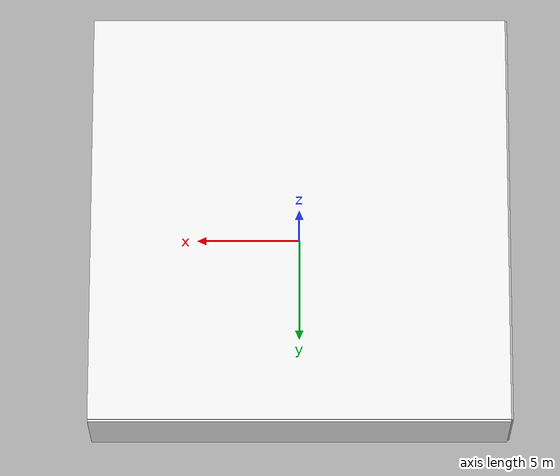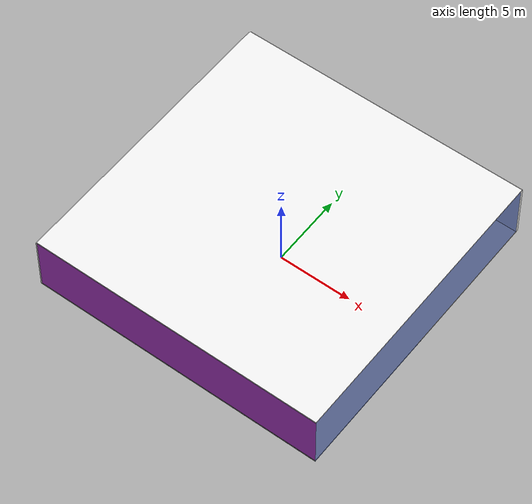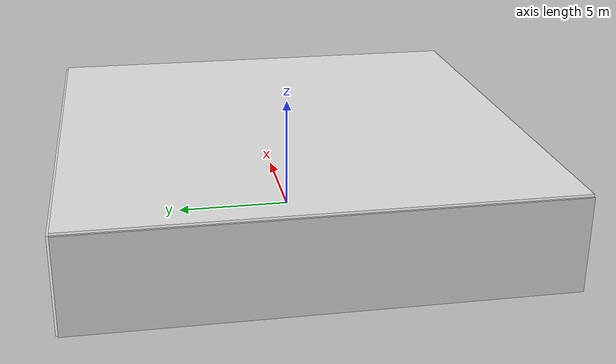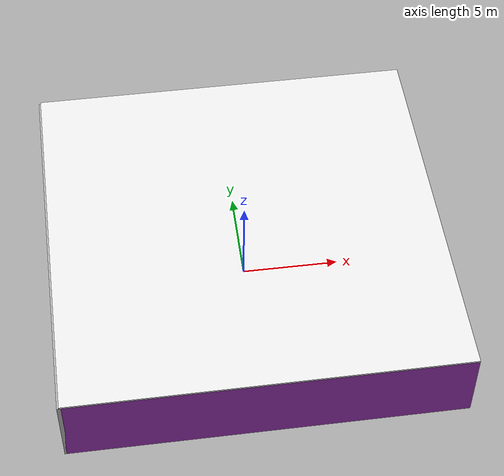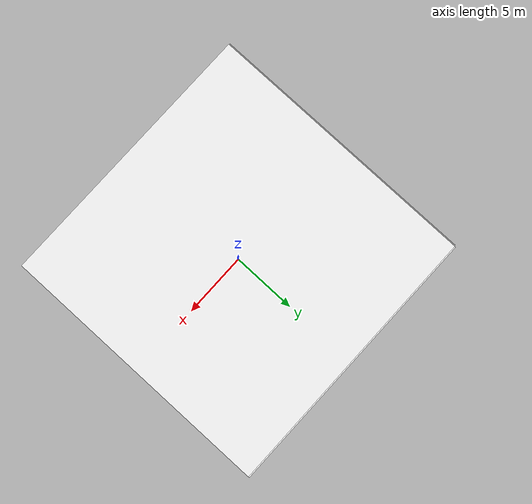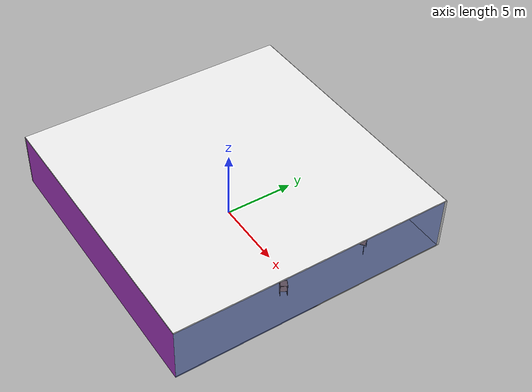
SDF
<sdf version="1.4">
 <world name="default">
  <physics type="ode">
   <max_step_size>0.001</max_step_size>
   <real_time_factor>1</real_time_factor>
   <real_time_update_rate>1000</real_time_update_rate>
   <gravity>0 0 -9.8</gravity>
  </physics>
  <scene><ambient>0.4 0.4 0.4 1</ambient><background>0.7 0.7 0.7 1</background><shadows>1</shadows></scene>
  <model name="Surrounding">
   <static>1</static>
   <link name="Ceiling">
    <collision name="Ceiling_Collision"><geometry><box><size>20 20 0.1</size></box></geometry></collision>
    <visual name="Ceiling_Visual">
     <geometry><box><size>20 20 0.1</size></box></geometry>
     <material>
      <script><uri>file://media/materials/scripts/gazebo.material</uri><name>Gazebo/White</name></script>
     </material>
    </visual>
    <pose>0 0 4.05 0 0 0</pose>
   </link>
   <link name="Wall_South">
    <collision name="Wall_South_Collision">
     <geometry><box><size>20 0 4</size></box></geometry>
     <pose>0 0 2 0 -0 0</pose>
    </collision>
    <visual name="Wall_South_Visual">
     <pose>0 0 2 0 -0 0</pose>
     <geometry><box><size>20 0 4</size></box></geometry>
     <material>
      <script><uri>file://media/materials/scripts/gazebo.material</uri><name>Gazebo/PurpleGlow</name></script>
     </material>
    </visual>
    <velocity_decay><linear>0</linear><angular>0</angular></velocity_decay>
    <pose>0 -10 0 0 -0 0</pose>
   </link>
   <link name="Wall_East">
    <collision name="Wall_21_Collision">
     <geometry><box><size>20 0 4</size></box></geometry>
     <pose>0 0 2 0 -0 0</pose>
    </collision>
    <visual name="Wall_21_Visual">
     <pose>0 0 2 0 -0 0</pose>
     <geometry><box><size>20 0 4</size></box></geometry>
     <material>
      <script><uri>file://media/materials/scripts/gazebo.material</uri><name>Gazebo/BlueTransparent</name></script>
     </material>
    </visual>
    <velocity_decay><linear>0</linear><angular>0</angular></velocity_decay>
    <pose>10 0 0 0 -0 1.5708</pose>
   </link>
   <link name="Wall_North">
    <collision name="Wall_22_Collision">
     <geometry><box><size>20 0.2 4</size></box></geometry>
     <pose>0 0 2 0 -0 0</pose>
    </collision>
    <visual name="Wall_22_Visual">
     <pose>0 0 2 0 -0 0</pose>
     <geometry><box><size>20 0.2 4</size></box></geometry>
     <material>
      <script><uri>file://media/materials/scripts/gazebo.material</uri><name>Gazebo/WhiteGlow</name></script>
     </material>
    </visual>
    <velocity_decay><linear>0</linear><angular>0</angular></velocity_decay>
    <pose>0 10 0 0 -0 0</pose>
   </link>
   <link name="Wall_West">
    <collision name="Wall_23_Collision">
     <geometry><box><size>20 0.2 4</size></box></geometry>
     <pose>0 0 2 0 -0 0</pose>
    </collision>
    <visual name="Wall_23_Visual">
     <pose>0 0 2 0 -0 0</pose>
     <geometry><box><size>20 0.2 4</size></box></geometry>
     <material>
      <script><uri>file://media/materials/scripts/gazebo.material</uri><name>Gazebo/LightOn</name></script>
     </material>
    </visual>
    <velocity_decay><linear>0</linear><angular>0</angular></velocity_decay>
    <pose>-10 0 0 0 0 -1.5708</pose>
   </link>
   <link name="Ground_link">
    <collision name="collision">
     <pose>0 0 .05 0 -0 0</pose>
     <geometry><box><size>20 20 0.1</size></box></geometry>
    </collision>
    <visual name="visual">
     <pose>0 0 .05 0 -0 0</pose>
     <geometry><box><size>20 20 0.1</size></box></geometry>
     <material>
      <script><uri>file://media/materials/scripts/gazebo.material</uri><name>Gazebo/GreyGradientSky</name></script>
     </material>
    </visual>
   </link>
   <static>1</static>
  </model>
  <spherical_coordinates>
   <surface_model>EARTH_WGS84</surface_model>
   <latitude_deg>0</latitude_deg>
   <longitude_deg>0</longitude_deg>
   <elevation>0</elevation>
   <heading_deg>0</heading_deg>
  </spherical_coordinates>
  <light name="lightball_0" type="diffuse">
   <diffuse>0.8 0.8 0.8 1</diffuse>
   <specular>0.2 0.2 0.2 1</specular>
   <attenuation>
    <range>100</range>
    <constant>0.7</constant>
    <linear>0.01</linear>
    <quadratic>0.001</quadratic>
   </attenuation>
   <direction>-0.5 0.1 -0.9</direction>
   <pose>-5.71745435983 -4.92309419902 1.92295701243 0 0 0</pose>
  </light>
  <include><uri>model://cabinet</uri><pose>-5.27171021747 -8.16836930343 0 0 0 3.09434578977</pose></include>
  <include><uri>model://cabinet</uri><pose>-1.35259173835 -7.76524553071 0 0 0 0.0117693448629</pose></include>
  <include><uri>model://cabinet</uri><pose>0.943905150728 -5.12455353119 0 0 0 2.36461964127</pose></include>
  <include><uri>model://cabinet</uri><pose>1.75696095506 -1.67770177981 0 0 0 0.196154186217</pose></include>
  <include><uri>model://cabinet</uri><pose>8.06409314322 -1.036721423 0 0 0 2.63925665892</pose></include>
  <include><uri>model://table</uri><pose>7.33534352165 5.14825999862 0 0 0 0.632072973727</pose></include>
 </world>
</sdf>

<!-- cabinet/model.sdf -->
<sdf version="1.5">
  <model name="cabinet">
    <static>true</static>
    <link name="cabinet_bottom_plate">
      <inertial>
        <pose>0 0 -1 0 0 0</pose>
        <inertia>
          <ixx>2.050000</ixx>
          <ixy>0</ixy>
          <ixz>0</ixz>
          <iyy>2.050000</iyy>
          <iyz>0</iyz>
          <izz>2.050000</izz>
        </inertia>
        <mass>25.000000</mass>
      </inertial>
      <collision name="cabinet_bottom_plate_geom">
        <pose>0 0 0.010000 0 0 0</pose>
        <geometry>
          <box>
            <size>0.450000 0.450000 0.020000</size>
          </box>
        </geometry>
      </collision>
      <visual name="cabinet_bottom_plate_geom_visual">
        <pose>0 0 0.010000 0 0 0</pose>
        <geometry>
          <box>
            <size>0.450000 0.450000 0.020000</size>
          </box>
        </geometry>
        <material>
          <script>
            <uri>model://media/materials/scripts/gazebo.material</uri>
            <name>Gazebo/Wood</name>
          </script>
        </material>
      </visual>
      <collision name="cabinet_bottom_plate_geom_cabinet_back_plate">
        <pose>0.235000 0 0.510000 0 0 0</pose>
        <geometry>
          <box>
            <size>0.020000 0.450000 1.020000</size>
          </box>
        </geometry>
      </collision>
      <visual name="cabinet_bottom_plate_geom_cabinet_back_plate_visual">
        <pose>0.235000 0 0.510000 0 0 0</pose>
        <geometry>
          <box>
            <size>0.020000 0.450000 1.020000</size>
          </box>
        </geometry>
        <material>
          <script>
            <uri>model://media/materials/scripts/gazebo.material</uri>
            <name>Gazebo/Wood</name>
          </script>
        </material>
      </visual>
      <collision name="cabinet_bottom_plate_geom_cabinet_left_plate">
        <pose>0 0.235000 0.510000 0 0 0</pose>
        <geometry>
          <box>
            <size>0.450000 0.020000 1.020000</size>
          </box>
        </geometry>
      </collision>
      <visual name="cabinet_bottom_plate_geom_cabinet_left_plate_visual">
        <pose>0 0.235000 0.510000 0 0 0</pose>
        <geometry>
          <box>
            <size>0.450000 0.020000 1.020000</size>
          </box>
        </geometry>
        <material>
          <script>
            <uri>model://media/materials/scripts/gazebo.material</uri>
            <name>Gazebo/Wood</name>
          </script>
        </material>
      </visual>
      <collision name="cabinet_bottom_plate_geom_cabinet_middle_plate">
        <pose>0 0 0.510000 0 0 0</pose>
        <geometry>
          <box>
            <size>0.450000 0.450000 0.020000</size>
          </box>
        </geometry>
      </collision>
      <visual name="cabinet_bottom_plate_geom_cabinet_middle_plate_visual">
        <pose>0 0 0.510000 0 0 0</pose>
        <geometry>
          <box>
            <size>0.450000 0.450000 0.020000</size>
          </box>
        </geometry>
        <material>
          <script>
            <uri>model://media/materials/scripts/gazebo.material</uri>
            <name>Gazebo/Wood</name>
          </script>
        </material>
      </visual>
      <collision name="cabinet_bottom_plate_geom_cabinet_right_plate">
        <pose>0 -0.235000 0.510000 0 0 0</pose>
        <geometry>
          <box>
            <size>0.450000 0.020000 1.020000</size>
          </box>
        </geometry>
      </collision>
      <visual name="cabinet_bottom_plate_geom_cabinet_right_plate_visual">
        <pose>0 -0.235000 0.510000 0 0 0</pose>
        <geometry>
          <box>
            <size>0.450000 0.020000 1.020000</size>
          </box>
        </geometry>
        <material>
          <script>
            <uri>model://media/materials/scripts/gazebo.material</uri>
            <name>Gazebo/Wood</name>
          </script>
        </material>
      </visual>
      <collision name="cabinet_bottom_plate_geom_cabinet_top_plate">
        <pose>0 0 1.010000 0 0 0</pose>
        <geometry>
          <box>
            <size>0.450000 0.450000 0.020000</size>
          </box>
        </geometry>
      </collision>
      <visual name="cabinet_bottom_plate_geom_cabinet_top_plate_visual">
        <pose>0 0 1.010000 0 0 0</pose>
        <geometry>
          <box>
            <size>0.450000 0.450000 0.020000</size>
          </box>
        </geometry>
        <material>
          <script>
            <uri>model://media/materials/scripts/gazebo.material</uri>
            <name>Gazebo/Wood</name>
          </script>
        </material>
      </visual>
    </link>
  </model>
</sdf>

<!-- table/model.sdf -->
<sdf version="1.5">
  <model name="table">
    <static>true</static>
    <link name="link">
      <collision name="surface">
        <pose>0 0 1.0 0 0 0</pose>
        <geometry>
          <box>
            <size>1.5 0.8 0.03</size>
          </box>
        </geometry>
        <surface>
          <friction>
            <ode>
              <mu>0.6</mu>
              <mu2>0.6</mu2>
            </ode>
          </friction>
        </surface>
      </collision>
      <visual name="visual1">
        <pose>0 0 1.0 0 0 0</pose>
        <geometry>
          <box>
            <size>1.5 0.8 0.03</size>
          </box>
        </geometry>
        <material>
          <script>
            <uri>model://media/materials/scripts/gazebo.material</uri>
            <name>Gazebo/Wood</name>
          </script>
        </material>
      </visual>
      <collision name="front_left_leg">
        <pose>0.68 0.38 0.5 0 0 0</pose>
        <geometry>
          <cylinder>
            <radius>0.02</radius>
            <length>1.0</length>
          </cylinder>
        </geometry>
      </collision>
      <visual name="front_left_leg">
        <pose>0.68 0.38 0.5 0 0 0</pose>
        <geometry>
          <cylinder>
            <radius>0.02</radius>
            <length>1.0</length>
          </cylinder>
        </geometry>
        <material>
          <script>
            <uri>model://media/materials/scripts/gazebo.material</uri>
            <name>Gazebo/Grey</name>
          </script>
        </material>
      </visual>
      <collision name="front_right_leg">
        <pose>0.68 -0.38 0.5 0 0 0</pose>
        <geometry>
          <cylinder>
            <radius>0.02</radius>
            <length>1.0</length>
          </cylinder>
        </geometry>
      </collision>
      <visual name="front_right_leg">
        <pose>0.68 -0.38 0.5 0 0 0</pose>
        <geometry>
          <cylinder>
            <radius>0.02</radius>
            <length>1.0</length>
          </cylinder>
        </geometry>
        <material>
          <script>
            <uri>model://media/materials/scripts/gazebo.material</uri>
            <name>Gazebo/Grey</name>
          </script>
        </material>
      </visual>
      <collision name="back_right_leg">
        <pose>-0.68 -0.38 0.5 0 0 0</pose>
        <geometry>
          <cylinder>
            <radius>0.02</radius>
            <length>1.0</length>
          </cylinder>
        </geometry>
      </collision>
      <visual name="back_right_leg">
        <pose>-0.68 -0.38 0.5 0 0 0</pose>
        <geometry>
          <cylinder>
            <radius>0.02</radius>
            <length>1.0</length>
          </cylinder>
        </geometry>
        <material>
          <script>
            <uri>model://media/materials/scripts/gazebo.material</uri>
            <name>Gazebo/Grey</name>
          </script>
        </material>
      </visual>
      <collision name="back_left_leg">
        <pose>-0.68 0.38 0.5 0 0 0</pose>
        <geometry>
          <cylinder>
            <radius>0.02</radius>
            <length>1.0</length>
          </cylinder>
        </geometry>
      </collision>
      <visual name="back_left_leg">
        <pose>-0.68 0.38 0.5 0 0 0</pose>
        <geometry>
          <cylinder>
            <radius>0.02</radius>
            <length>1.0</length>
          </cylinder>
        </geometry>
        <material>
          <script>
            <uri>model://media/materials/scripts/gazebo.material</uri>
            <name>Gazebo/Grey</name>
          </script>
        </material>
      </visual>
    </link>
  </model>
</sdf>
